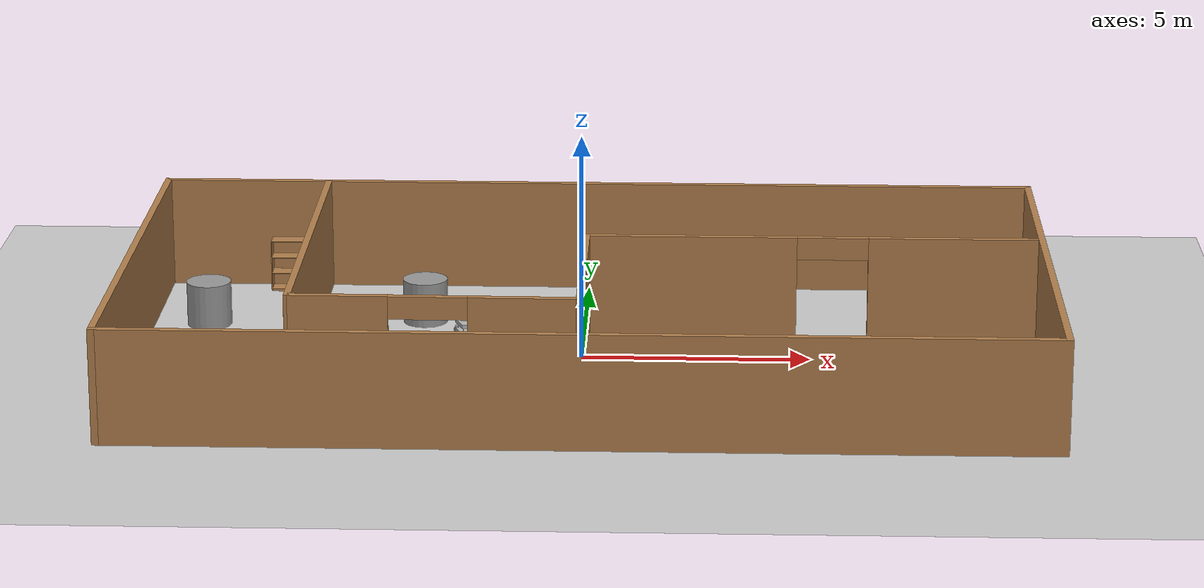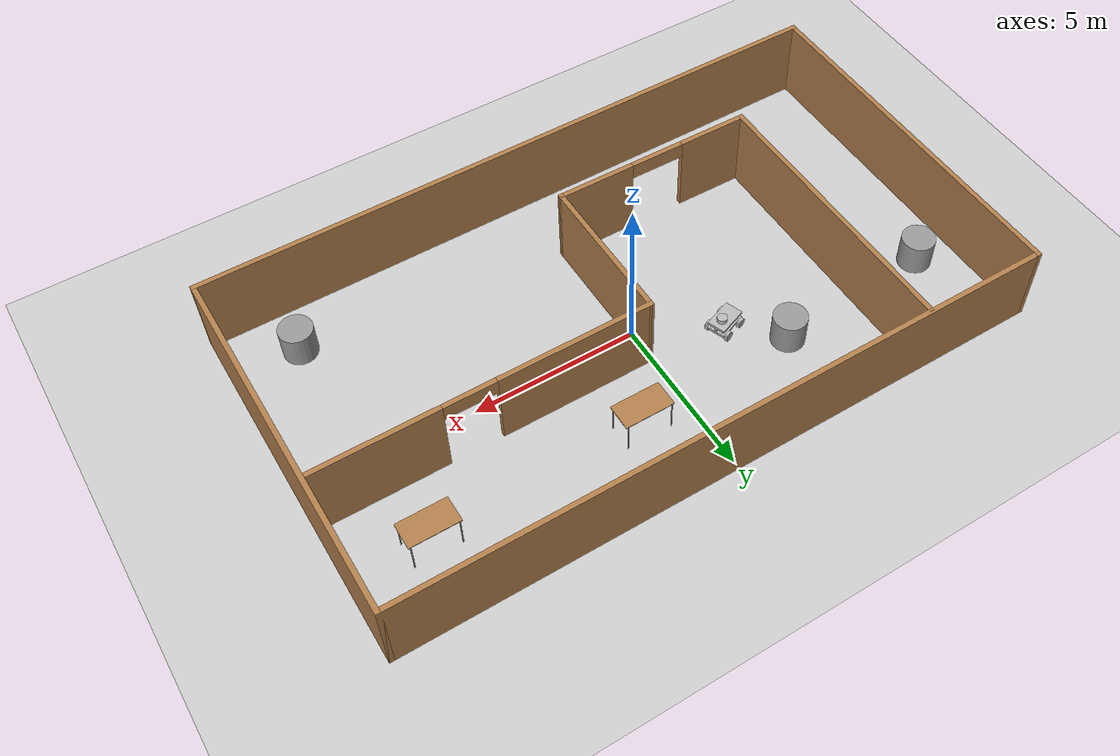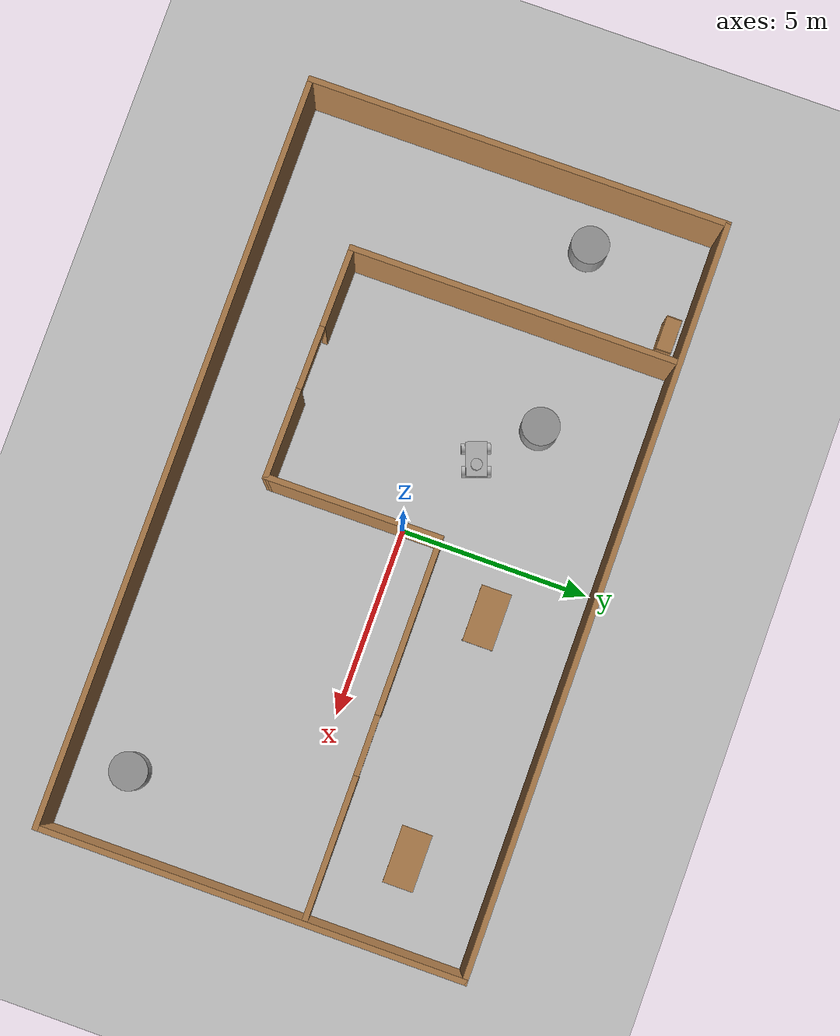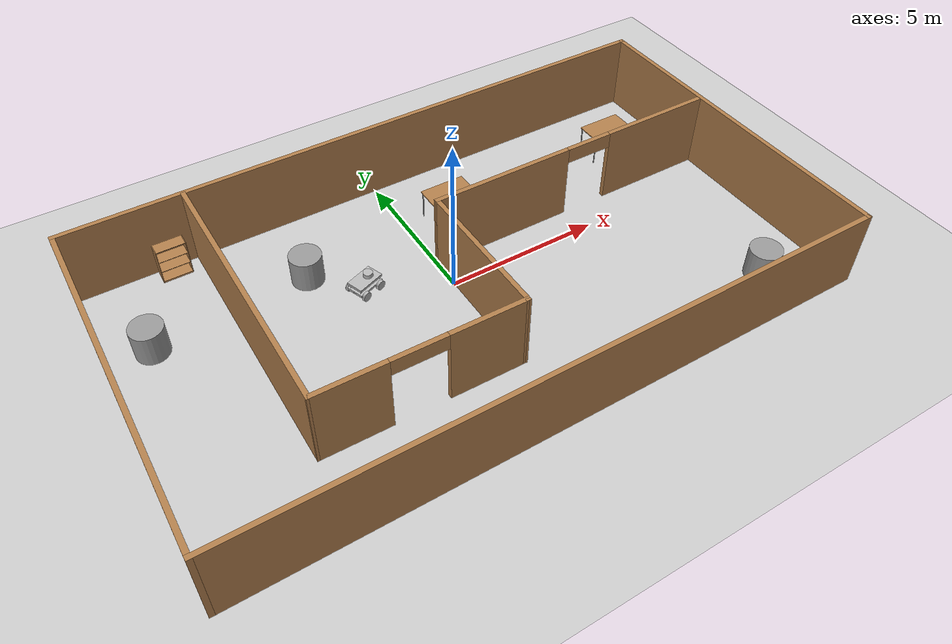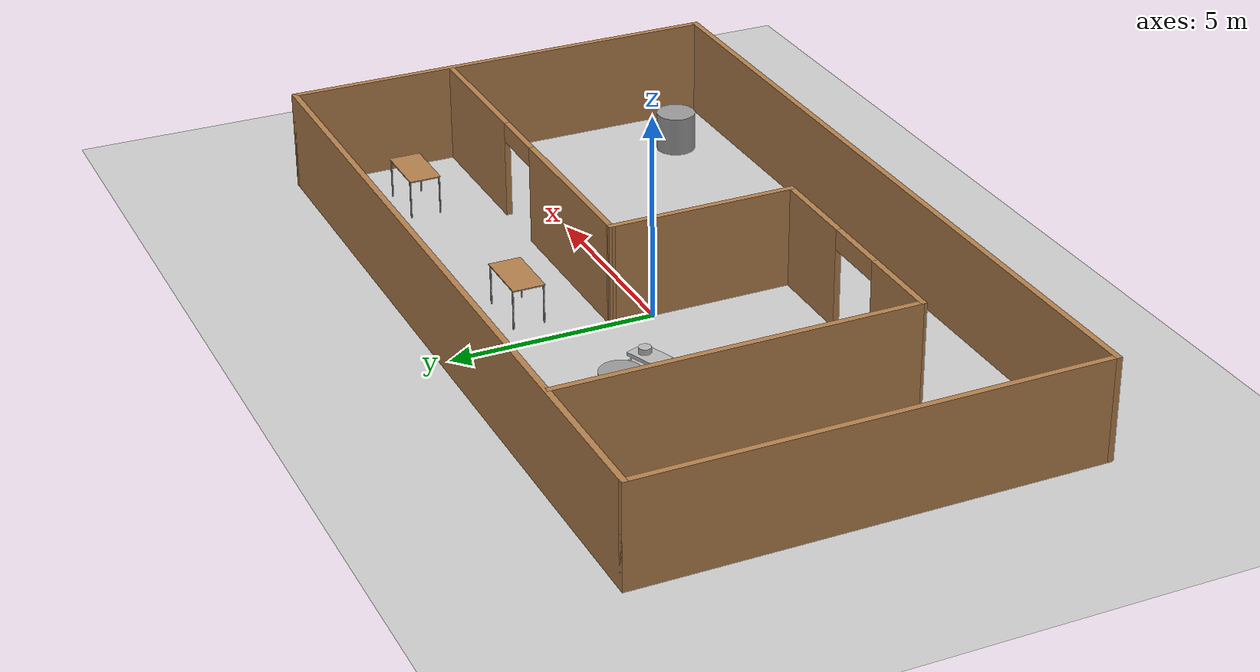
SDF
<sdf version="1.7">
 <world name="default">
  <light name="sun" type="directional">
   <pose>0 0 10 0 -0 0</pose>
   <diffuse>0.8 0.8 0.8 1</diffuse>
   <specular>0.2 0.2 0.2 1</specular>
   <attenuation>
    <range>1000</range>
    <constant>0.9</constant>
    <linear>0.01</linear>
    <quadratic>0.001</quadratic>
   </attenuation>
   <direction>-0.5 0.1 -0.9</direction>
   <spot><inner_angle>0</inner_angle><outer_angle>0</outer_angle><falloff>0</falloff></spot>
  </light>
  <model name="ground_plane">
   <static>1</static>
   <link name="link">
    <collision name="collision">
     <geometry><plane><normal>0 0 1</normal><size>100 100</size></plane></geometry>
     <surface><friction><ode><mu>100</mu><mu2>50</mu2></ode></friction></surface>
    </collision>
    <visual name="visual">
     <cast_shadows>0</cast_shadows>
     <geometry><plane><normal>0 0 1</normal><size>100 100</size></plane></geometry>
     <material>
      <script><uri>file://media/materials/scripts/gazebo.material</uri><name>Gazebo/Grey</name></script>
     </material>
    </visual>
   </link>
  </model>
  <gravity>0 0 -9.8</gravity>
  <magnetic_field>6e-06 2.3e-05 -4.2e-05</magnetic_field>
  <atmosphere type="adiabatic"/>
  <physics type="ode">
   <max_step_size>0.001</max_step_size>
   <real_time_factor>1</real_time_factor>
   <real_time_update_rate>1000</real_time_update_rate>
  </physics>
  <scene><ambient>0.4 0.4 0.4 1</ambient><background>0.7 0.7 0.7 1</background><shadows>1</shadows></scene>
  <spherical_coordinates>
   <surface_model>EARTH_WGS84</surface_model>
   <latitude_deg>0</latitude_deg>
   <longitude_deg>0</longitude_deg>
   <elevation>0</elevation>
   <heading_deg>0</heading_deg>
  </spherical_coordinates>
  <model name="newWorld">
   <pose>0.151035 -0.38586 0 0 -0 0</pose>
   <link name="Wall_10">
    <collision name="Wall_10_Collision">
     <geometry><box><size>20 0.15 2.5</size></box></geometry>
     <pose>0 0 1.25 0 -0 0</pose>
    </collision>
    <visual name="Wall_10_Visual">
     <pose>0 0 1.25 0 -0 0</pose>
     <geometry><box><size>20 0.15 2.5</size></box></geometry>
     <material>
      <script><uri>file://media/materials/scripts/gazebo.material</uri><name>Gazebo/Wood</name></script>
      <ambient>0 0 0 1</ambient>
     </material>
     <meta><layer>0</layer></meta>
    </visual>
    <pose>-0 -5.55 0 0 -0 3.14159</pose>
   </link>
   <link name="Wall_14">
    <collision name="Wall_14_Collision">
     <geometry><box><size>11.25 0.15 2.5</size></box></geometry>
     <pose>0 0 1.25 0 -0 0</pose>
    </collision>
    <visual name="Wall_14_Visual">
     <pose>0 0 1.25 0 -0 0</pose>
     <geometry><box><size>11.25 0.15 2.5</size></box></geometry>
     <material>
      <script><uri>file://media/materials/scripts/gazebo.material</uri><name>Gazebo/Wood</name></script>
      <ambient>0 0 0 1</ambient>
     </material>
     <meta><layer>0</layer></meta>
    </visual>
    <pose>-9.925 0 0 0 -0 1.5708</pose>
   </link>
   <link name="Wall_16">
    <collision name="Wall_16_Collision">
     <geometry><box><size>8.75 0.15 2.5</size></box></geometry>
     <pose>0 0 1.25 0 -0 0</pose>
    </collision>
    <visual name="Wall_16_Visual">
     <pose>0 0 1.25 0 -0 0</pose>
     <geometry><box><size>8.75 0.15 2.5</size></box></geometry>
     <material>
      <script><uri>file://media/materials/scripts/gazebo.material</uri><name>Gazebo/Wood</name></script>
      <ambient>0 0 0 1</ambient>
     </material>
     <meta><layer>0</layer></meta>
    </visual>
    <pose>-6.1998 1.17964 0 0 -0 -1.5708</pose>
   </link>
   <link name="Wall_18">
    <pose>-3.13221 -3.15554 0 0 -0 -0.011467</pose>
    <visual name="Wall_18_Visual_0">
     <pose>-2.04649 0 1.25 0 -0 0</pose>
     <geometry><box><size>2.19259 0.15 2.5</size></box></geometry>
     <material>
      <script><uri>file://media/materials/scripts/gazebo.material</uri><name>Gazebo/Wood</name></script>
      <ambient>0 0 0 1</ambient>
     </material>
     <meta><layer>0</layer></meta>
    </visual>
    <collision name="Wall_18_Collision_0">
     <geometry><box><size>2.19259 0.15 2.5</size></box></geometry>
     <pose>-2.04649 0 1.25 0 -0 0</pose>
    </collision>
    <visual name="Wall_18_Visual_1">
     <pose>1.93326 0 1.25 0 -0 0</pose>
     <geometry><box><size>2.41906 0.15 2.5</size></box></geometry>
     <material>
      <script><uri>file://media/materials/scripts/gazebo.material</uri><name>Gazebo/Wood</name></script>
      <ambient>0 0 0 1</ambient>
     </material>
     <meta><layer>0</layer></meta>
    </visual>
    <collision name="Wall_18_Collision_1">
     <geometry><box><size>2.41906 0.15 2.5</size></box></geometry>
     <pose>1.93326 0 1.25 0 -0 0</pose>
    </collision>
    <visual name="Wall_18_Visual_2">
     <pose>-0.11323 0 2.25 0 -0 0</pose>
     <geometry><box><size>1.67393 0.15 0.5</size></box></geometry>
     <material>
      <script><uri>file://media/materials/scripts/gazebo.material</uri><name>Gazebo/Wood</name></script>
      <ambient>0 0 0 1</ambient>
     </material>
     <meta><layer>0</layer></meta>
    </visual>
    <collision name="Wall_18_Collision_2">
     <geometry><box><size>1.67393 0.15 0.5</size></box></geometry>
     <pose>-0.11323 0 2.25 0 -0 0</pose>
    </collision>
   </link>
   <link name="Wall_21">
    <pose>4.84631 1.39891 0 0 -0 0</pose>
    <visual name="Wall_21_Visual_0">
     <pose>-2.64583 0 1.25 0 -0 0</pose>
     <geometry><box><size>4.70833 0.15 2.5</size></box></geometry>
     <material>
      <script><uri>file://media/materials/scripts/gazebo.material</uri><name>Gazebo/Wood</name></script>
      <ambient>0 0 0 1</ambient>
     </material>
     <meta><layer>0</layer></meta>
    </visual>
    <collision name="Wall_21_Collision_0">
     <geometry><box><size>4.70833 0.15 2.5</size></box></geometry>
     <pose>-2.64583 0 1.25 0 -0 0</pose>
    </collision>
    <visual name="Wall_21_Visual_1">
     <pose>3.13836 0 1.25 0 -0 0</pose>
     <geometry><box><size>3.72327 0.15 2.5</size></box></geometry>
     <material>
      <script><uri>file://media/materials/scripts/gazebo.material</uri><name>Gazebo/Wood</name></script>
      <ambient>0 0 0 1</ambient>
     </material>
     <meta><layer>0</layer></meta>
    </visual>
    <collision name="Wall_21_Collision_1">
     <geometry><box><size>3.72327 0.15 2.5</size></box></geometry>
     <pose>3.13836 0 1.25 0 -0 0</pose>
    </collision>
    <visual name="Wall_21_Visual_2">
     <pose>0.492529 0 2.25 0 -0 0</pose>
     <geometry><box><size>1.5684 0.15 0.5</size></box></geometry>
     <material>
      <script><uri>file://media/materials/scripts/gazebo.material</uri><name>Gazebo/Wood</name></script>
      <ambient>0 0 0 1</ambient>
     </material>
     <meta><layer>0</layer></meta>
    </visual>
    <collision name="Wall_21_Collision_2">
     <geometry><box><size>1.5684 0.15 0.5</size></box></geometry>
     <pose>0.492529 0 2.25 0 -0 0</pose>
    </collision>
   </link>
   <link name="Wall_23">
    <collision name="Wall_23_Collision">
     <geometry><box><size>4.73964 0.15 2.5</size></box></geometry>
     <pose>0 0 1.25 0 -0 0</pose>
    </collision>
    <visual name="Wall_23_Visual">
     <pose>0 0 1.25 0 -0 0</pose>
     <geometry><box><size>4.73964 0.15 2.5</size></box></geometry>
     <material>
      <script><uri>file://media/materials/scripts/gazebo.material</uri><name>Gazebo/Wood</name></script>
      <ambient>0 0 0 1</ambient>
     </material>
     <meta><layer>0</layer></meta>
    </visual>
    <pose>-0.071658 -0.895904 0 0 -0 1.57386</pose>
   </link>
   <link name="Wall_25">
    <collision name="Wall_25_Collision">
     <geometry><box><size>20 0.15 2.5</size></box></geometry>
     <pose>0 0 1.25 0 -0 0</pose>
    </collision>
    <visual name="Wall_25_Visual">
     <pose>0 0 1.25 0 -0 0</pose>
     <geometry><box><size>20 0.15 2.5</size></box></geometry>
     <material>
      <script><uri>file://media/materials/scripts/gazebo.material</uri><name>Gazebo/Wood</name></script>
      <ambient>0 0 0 1</ambient>
     </material>
     <meta><layer>0</layer></meta>
    </visual>
    <pose>-0 5.55 0 0 -0 0</pose>
   </link>
   <link name="Wall_9">
    <collision name="Wall_9_Collision">
     <geometry><box><size>11.25 0.15 2.5</size></box></geometry>
     <pose>0 0 1.25 0 -0 0</pose>
    </collision>
    <visual name="Wall_9_Visual">
     <pose>0 0 1.25 0 -0 0</pose>
     <geometry><box><size>11.25 0.15 2.5</size></box></geometry>
     <material>
      <script><uri>file://media/materials/scripts/gazebo.material</uri><name>Gazebo/Wood</name></script>
      <ambient>0 0 0 1</ambient>
     </material>
     <meta><layer>0</layer></meta>
    </visual>
    <pose>9.925 0 0 0 -0 -1.5708</pose>
   </link>
   <static>1</static>
  </model>
  <model name="unit_cylinder">
   <pose>-3.62013 2.45029 0.499994 -4e-06 -2e-06 -0</pose>
   <link name="link">
    <inertial>
     <mass>1</mass>
     <inertia><ixx>0.145833</ixx><ixy>0</ixy><ixz>0</ixz><iyy>0.145833</iyy><iyz>0</iyz><izz>0.125</izz></inertia>
    </inertial>
    <collision name="collision">
     <geometry><cylinder><radius>0.5</radius><length>1</length></cylinder></geometry>
    </collision>
    <visual name="visual">
     <geometry><cylinder><radius>0.5</radius><length>1</length></cylinder></geometry>
     <material>
      <script><name>Gazebo/Grey</name><uri>file://media/materials/scripts/gazebo.material</uri></script>
     </material>
    </visual>
   </link>
  </model>
  <model name="unit_cylinder_0">
   <pose>-8.47811 2.09775 0.499992 -3e-06 -4e-06 -0.018024</pose>
   <link name="link">
    <inertial>
     <mass>1</mass>
     <inertia><ixx>0.145833</ixx><ixy>0</ixy><ixz>0</ixz><iyy>0.145833</iyy><iyz>0</iyz><izz>0.125</izz></inertia>
    </inertial>
    <collision name="collision">
     <geometry><cylinder><radius>0.5</radius><length>1</length></cylinder></geometry>
    </collision>
    <visual name="visual">
     <geometry><cylinder><radius>0.5</radius><length>1</length></cylinder></geometry>
     <material>
      <script><name>Gazebo/Grey</name><uri>file://media/materials/scripts/gazebo.material</uri></script>
     </material>
    </visual>
   </link>
  </model>
  <model name="unit_cylinder_1">
   <pose>8.0994 -4.42539 0.499992 -3e-06 2e-06 0</pose>
   <link name="link">
    <inertial>
     <mass>1</mass>
     <inertia><ixx>0.145833</ixx><ixy>0</ixy><ixz>0</ixz><iyy>0.145833</iyy><iyz>0</iyz><izz>0.125</izz></inertia>
    </inertial>
    <collision name="collision">
     <geometry><cylinder><radius>0.5</radius><length>1</length></cylinder></geometry>
    </collision>
    <visual name="visual">
     <geometry><cylinder><radius>0.5</radius><length>1</length></cylinder></geometry>
     <material>
      <script><name>Gazebo/Grey</name><uri>file://media/materials/scripts/gazebo.material</uri></script>
     </material>
    </visual>
   </link>
  </model>
  <model name="table">
   <static>1</static>
   <link name="link">
    <collision name="surface">
     <pose>0 0 1 0 -0 0</pose>
     <geometry><box><size>1.5 0.8 0.03</size></box></geometry>
     <surface><friction><ode><mu>0.6</mu><mu2>0.6</mu2></ode></friction></surface>
    </collision>
    <visual name="visual1">
     <pose>0 0 1 0 -0 0</pose>
     <geometry><box><size>1.5 0.8 0.03</size></box></geometry>
     <material>
      <script><uri>file://media/materials/scripts/gazebo.material</uri><name>Gazebo/Wood</name></script>
     </material>
    </visual>
    <collision name="front_left_leg">
     <pose>0.68 0.38 0.5 0 -0 0</pose>
     <geometry><cylinder><radius>0.02</radius><length>1</length></cylinder></geometry>
    </collision>
    <visual name="front_left_leg">
     <pose>0.68 0.38 0.5 0 -0 0</pose>
     <geometry><cylinder><radius>0.02</radius><length>1</length></cylinder></geometry>
     <material>
      <script><uri>file://media/materials/scripts/gazebo.material</uri><name>Gazebo/Grey</name></script>
     </material>
    </visual>
    <collision name="front_right_leg">
     <pose>0.68 -0.38 0.5 0 -0 0</pose>
     <geometry><cylinder><radius>0.02</radius><length>1</length></cylinder></geometry>
    </collision>
    <visual name="front_right_leg">
     <pose>0.68 -0.38 0.5 0 -0 0</pose>
     <geometry><cylinder><radius>0.02</radius><length>1</length></cylinder></geometry>
     <material>
      <script><uri>file://media/materials/scripts/gazebo.material</uri><name>Gazebo/Grey</name></script>
     </material>
    </visual>
    <collision name="back_right_leg">
     <pose>-0.68 -0.38 0.5 0 -0 0</pose>
     <geometry><cylinder><radius>0.02</radius><length>1</length></cylinder></geometry>
    </collision>
    <visual name="back_right_leg">
     <pose>-0.68 -0.38 0.5 0 -0 0</pose>
     <geometry><cylinder><radius>0.02</radius><length>1</length></cylinder></geometry>
     <material>
      <script><uri>file://media/materials/scripts/gazebo.material</uri><name>Gazebo/Grey</name></script>
     </material>
    </visual>
    <collision name="back_left_leg">
     <pose>-0.68 0.38 0.5 0 -0 0</pose>
     <geometry><cylinder><radius>0.02</radius><length>1</length></cylinder></geometry>
    </collision>
    <visual name="back_left_leg">
     <pose>-0.68 0.38 0.5 0 -0 0</pose>
     <geometry><cylinder><radius>0.02</radius><length>1</length></cylinder></geometry>
     <material>
      <script><uri>file://media/materials/scripts/gazebo.material</uri><name>Gazebo/Grey</name></script>
     </material>
    </visual>
   </link>
   <pose>7.79816 2.90378 0 0 -0 0</pose>
  </model>
  <model name="table_0">
   <static>1</static>
   <link name="link">
    <collision name="surface">
     <pose>0 0 1 0 -0 0</pose>
     <geometry><box><size>1.5 0.8 0.03</size></box></geometry>
     <surface><friction><ode><mu>0.6</mu><mu2>0.6</mu2></ode></friction></surface>
    </collision>
    <visual name="visual1">
     <pose>0 0 1 0 -0 0</pose>
     <geometry><box><size>1.5 0.8 0.03</size></box></geometry>
     <material>
      <script><uri>file://media/materials/scripts/gazebo.material</uri><name>Gazebo/Wood</name></script>
     </material>
    </visual>
    <collision name="front_left_leg">
     <pose>0.68 0.38 0.5 0 -0 0</pose>
     <geometry><cylinder><radius>0.02</radius><length>1</length></cylinder></geometry>
    </collision>
    <visual name="front_left_leg">
     <pose>0.68 0.38 0.5 0 -0 0</pose>
     <geometry><cylinder><radius>0.02</radius><length>1</length></cylinder></geometry>
     <material>
      <script><uri>file://media/materials/scripts/gazebo.material</uri><name>Gazebo/Grey</name></script>
     </material>
    </visual>
    <collision name="front_right_leg">
     <pose>0.68 -0.38 0.5 0 -0 0</pose>
     <geometry><cylinder><radius>0.02</radius><length>1</length></cylinder></geometry>
    </collision>
    <visual name="front_right_leg">
     <pose>0.68 -0.38 0.5 0 -0 0</pose>
     <geometry><cylinder><radius>0.02</radius><length>1</length></cylinder></geometry>
     <material>
      <script><uri>file://media/materials/scripts/gazebo.material</uri><name>Gazebo/Grey</name></script>
     </material>
    </visual>
    <collision name="back_right_leg">
     <pose>-0.68 -0.38 0.5 0 -0 0</pose>
     <geometry><cylinder><radius>0.02</radius><length>1</length></cylinder></geometry>
    </collision>
    <visual name="back_right_leg">
     <pose>-0.68 -0.38 0.5 0 -0 0</pose>
     <geometry><cylinder><radius>0.02</radius><length>1</length></cylinder></geometry>
     <material>
      <script><uri>file://media/materials/scripts/gazebo.material</uri><name>Gazebo/Grey</name></script>
     </material>
    </visual>
    <collision name="back_left_leg">
     <pose>-0.68 0.38 0.5 0 -0 0</pose>
     <geometry><cylinder><radius>0.02</radius><length>1</length></cylinder></geometry>
    </collision>
    <visual name="back_left_leg">
     <pose>-0.68 0.38 0.5 0 -0 0</pose>
     <geometry><cylinder><radius>0.02</radius><length>1</length></cylinder></geometry>
     <material>
      <script><uri>file://media/materials/scripts/gazebo.material</uri><name>Gazebo/Grey</name></script>
     </material>
    </visual>
   </link>
   <pose>1.44416 2.77487 0 0 -0 0</pose>
  </model>
  <model name="bookshelf">
   <static>1</static>
   <link name="link">
    <inertial><mass>1</mass></inertial>
    <collision name="back">
     <pose>0 0.005 0.6 0 -0 0</pose>
     <geometry><box><size>0.9 0.01 1.2</size></box></geometry>
    </collision>
    <visual name="visual1">
     <pose>0 0.005 0.6 0 -0 0</pose>
     <geometry><box><size>0.9 0.01 1.2</size></box></geometry>
     <material>
      <script><uri>file://media/materials/scripts/gazebo.material</uri><name>Gazebo/Wood</name></script>
     </material>
    </visual>
    <collision name="left_side">
     <pose>0.45 -0.195 0.6 0 -0 0</pose>
     <geometry><box><size>0.02 0.4 1.2</size></box></geometry>
    </collision>
    <visual name="visual2">
     <pose>0.45 -0.195 0.6 0 -0 0</pose>
     <geometry><box><size>0.02 0.4 1.2</size></box></geometry>
     <material>
      <script><uri>file://media/materials/scripts/gazebo.material</uri><name>Gazebo/Wood</name></script>
     </material>
    </visual>
    <collision name="right_side">
     <pose>-0.45 -0.195 0.6 0 -0 0</pose>
     <geometry><box><size>0.02 0.4 1.2</size></box></geometry>
    </collision>
    <visual name="visual3">
     <pose>-0.45 -0.195 0.6 0 -0 0</pose>
     <geometry><box><size>0.02 0.4 1.2</size></box></geometry>
     <material>
      <script><uri>file://media/materials/scripts/gazebo.material</uri><name>Gazebo/Wood</name></script>
     </material>
    </visual>
    <collision name="bottom">
     <pose>0 -0.195 0.03 0 -0 0</pose>
     <geometry><box><size>0.88 0.4 0.06</size></box></geometry>
    </collision>
    <visual name="visual4">
     <pose>0 -0.195 0.03 0 -0 0</pose>
     <geometry><box><size>0.88 0.4 0.06</size></box></geometry>
     <material>
      <script><uri>file://media/materials/scripts/gazebo.material</uri><name>Gazebo/Wood</name></script>
     </material>
    </visual>
    <collision name="top">
     <pose>0 -0.195 1.19 0 -0 0</pose>
     <geometry><box><size>0.88 0.4 0.02</size></box></geometry>
    </collision>
    <visual name="visual5">
     <pose>0 -0.195 1.19 0 -0 0</pose>
     <geometry><box><size>0.88 0.4 0.02</size></box></geometry>
     <material>
      <script><uri>file://media/materials/scripts/gazebo.material</uri><name>Gazebo/Wood</name></script>
     </material>
    </visual>
    <collision name="low_shelf">
     <pose>0 -0.195 0.43 0 -0 0</pose>
     <geometry><box><size>0.88 0.4 0.02</size></box></geometry>
    </collision>
    <visual name="visual6">
     <pose>0 -0.195 0.43 0 -0 0</pose>
     <geometry><box><size>0.88 0.4 0.02</size></box></geometry>
     <material>
      <script><uri>file://media/materials/scripts/gazebo.material</uri><name>Gazebo/Wood</name></script>
     </material>
    </visual>
    <collision name="high_shelf">
     <pose>0 -0.195 0.8 0 -0 0</pose>
     <geometry><box><size>0.88 0.4 0.02</size></box></geometry>
    </collision>
    <visual name="visual7">
     <pose>0 -0.195 0.8 0 -0 0</pose>
     <geometry><box><size>0.88 0.4 0.02</size></box></geometry>
     <material>
      <script><uri>file://media/materials/scripts/gazebo.material</uri><name>Gazebo/Wood</name></script>
     </material>
    </visual>
   </link>
   <pose>-6.90543 4.93823 0 0 -0 0</pose>
  </model>
  <model name="navy">
   <link name="base_link">
    <inertial>
     <pose>0.002723 0 0.105941 0 -0 0</pose>
     <mass>2.02</mass>
     <inertia>
      <ixx>0.722518</ixx>
      <ixy>0</ixy>
      <ixz>-0.000217327</ixz>
      <iyy>0.724328</iyy>
      <iyz>0</iyz>
      <izz>0.701811</izz>
     </inertia>
    </inertial>
    <collision name="base_link_collision"><geometry><box><size>0.9 0.55 0.08</size></box></geometry></collision>
    <collision name="base_link_fixed_joint_lump__camera_link_collision_1">
     <pose>0.4 0 0.08 0 -0 0</pose>
     <geometry><box><size>0.08 0.08 0.08</size></box></geometry>
    </collision>
    <collision name="base_link_fixed_joint_lump__lidar_link_collision_2">
     <pose>0.15 0 0.32 0 -0 0</pose>
     <geometry>
      <mesh><scale>1 1 1</scale><uri>/home/alashkar/scratch_ws/src/robot_description/meshes/rplidar.dae</uri></mesh>
     </geometry>
    </collision>
    <collision name="base_link_fixed_joint_lump__spacer_BL_collision_3">
     <pose>-0.4 0.2 0.1 0 -0 0</pose>
     <geometry><cylinder><length>0.14</length><radius>0.009</radius></cylinder></geometry>
    </collision>
    <collision name="base_link_fixed_joint_lump__spacer_BR_collision_4">
     <pose>-0.4 -0.2 0.1 0 -0 0</pose>
     <geometry><cylinder><length>0.14</length><radius>0.009</radius></cylinder></geometry>
    </collision>
    <collision name="base_link_fixed_joint_lump__spacer_FL_collision_5">
     <pose>0.4 0.2 0.1 0 -0 0</pose>
     <geometry><cylinder><length>0.14</length><radius>0.009</radius></cylinder></geometry>
    </collision>
    <collision name="base_link_fixed_joint_lump__spacer_FR_collision_6">
     <pose>0.4 -0.2 0.1 0 -0 0</pose>
     <geometry><cylinder><length>0.14</length><radius>0.009</radius></cylinder></geometry>
    </collision>
    <collision name="base_link_fixed_joint_lump__top_link_collision_7">
     <pose>0 0 0.21 0 -0 0</pose>
     <geometry><box><size>0.9 0.55 0.08</size></box></geometry>
    </collision>
    <collision name="base_link_fixed_joint_lump__ultrasonicB_link_collision_8">
     <pose>-0.45 0 0.01 0 -0 0</pose>
     <geometry><box><size>0.02 0.1 0.03</size></box></geometry>
    </collision>
    <collision name="base_link_fixed_joint_lump__ultrasonicF_link_collision_9">
     <pose>0.45 0 0.01 0 -0 0</pose>
     <geometry><box><size>0.02 0.1 0.03</size></box></geometry>
    </collision>
    <visual name="base_link_fixed_joint_lump__body_visual_visual">
     <geometry><box><size>0.9 0.55 0.08</size></box></geometry>
    </visual>
    <visual name="base_link_fixed_joint_lump__camera_link_visual_1">
     <pose>0.45 0 0.08 1.57 -0 1.57</pose>
     <geometry><cylinder><length>0.02</length><radius>0.02</radius></cylinder></geometry>
    </visual>
    <visual name="base_link_fixed_joint_lump__camera_body_visual_2">
     <pose>0.4 0 0.08 0 -0 0</pose>
     <geometry><box><size>0.08 0.08 0.08</size></box></geometry>
    </visual>
    <visual name="base_link_fixed_joint_lump__lidar_link_visual_3">
     <pose>0.15 0 0.32 0 -0 0</pose>
     <geometry><cylinder><length>0.15</length><radius>0.15</radius></cylinder></geometry>
    </visual>
    <visual name="base_link_fixed_joint_lump__spacer_BL_visual_4">
     <pose>-0.4 0.2 0.1 0 -0 0</pose>
     <geometry><cylinder><length>0.14</length><radius>0.009</radius></cylinder></geometry>
    </visual>
    <visual name="base_link_fixed_joint_lump__spacer_BR_visual_5">
     <pose>-0.4 -0.2 0.1 0 -0 0</pose>
     <geometry><cylinder><length>0.14</length><radius>0.009</radius></cylinder></geometry>
    </visual>
    <visual name="base_link_fixed_joint_lump__spacer_FL_visual_6">
     <pose>0.4 0.2 0.1 0 -0 0</pose>
     <geometry><cylinder><length>0.14</length><radius>0.009</radius></cylinder></geometry>
    </visual>
    <visual name="base_link_fixed_joint_lump__spacer_FR_visual_7">
     <pose>0.4 -0.2 0.1 0 -0 0</pose>
     <geometry><cylinder><length>0.14</length><radius>0.009</radius></cylinder></geometry>
    </visual>
    <visual name="base_link_fixed_joint_lump__top_link_visual_8">
     <pose>0 0 0.21 0 -0 0</pose>
     <geometry><box><size>0.9 0.55 0.08</size></box></geometry>
    </visual>
    <visual name="base_link_fixed_joint_lump__ultrasonicB_link_visual_9">
     <pose>-0.45 0 0.01 0 -0 0</pose>
     <geometry><box><size>0.02 0.1 0.03</size></box></geometry>
    </visual>
    <visual name="base_link_fixed_joint_lump__ultrasonicF_link_visual_10">
     <pose>0.45 0 0.01 0 -0 0</pose>
     <geometry><box><size>0.02 0.1 0.03</size></box></geometry>
    </visual>
    <sensor name="camera1" type="camera">
     <update_rate>30</update_rate>
     <camera name="head">
      <horizontal_fov>1.5708</horizontal_fov>
      <image><width>800</width><height>800</height><format>R8G8B8</format></image>
      <clip><near>0.02</near><far>300</far></clip>
      <noise><type>gaussian</type><mean>0</mean><stddev>0.007</stddev></noise>
     </camera>
     <plugin name="camera_controller" filename="libgazebo_ros_camera.so">
      <alwaysOn>1</alwaysOn>
      <updateRate>0.0</updateRate>
      <cameraName>/camera1</cameraName>
      <imageTopicName>image_raw</imageTopicName>
      <cameraInfoTopicName>camera1/camera_info</cameraInfoTopicName>
      <frameName>camera_link</frameName>
      <hackBaseline>0.07</hackBaseline>
      <distortionK1>0.0</distortionK1>
      <distortionK2>0.0</distortionK2>
      <distortionK3>0.0</distortionK3>
      <distortionT1>0.0</distortionT1>
      <distortionT2>0.0</distortionT2>
      <robotNamespace>/</robotNamespace>
     </plugin>
     <pose>0.4 0 0.08 0 -0 1.57</pose>
    </sensor>
    <sensor name="lidar_sensor" type="ray">
     <visualize>1</visualize>
     <update_rate>40</update_rate>
     <ray>
      <scan>
       <horizontal>
        <samples>720</samples>
        <resolution>1</resolution>
        <min_angle>-1.5708</min_angle>
        <max_angle>1.5708</max_angle>
       </horizontal>
       <vertical><samples>1</samples><min_angle>0</min_angle><max_angle>0</max_angle></vertical>
      </scan>
      <range><min>0.1</min><max>30</max><resolution>0.01</resolution></range>
      <noise><type>gaussian</type><mean>0</mean><stddev>0.01</stddev></noise>
     </ray>
     <plugin name="gazebo_ros_head_hokuyo_controller" filename="libgazebo_ros_laser.so">
      <topicName>/scan</topicName>
      <frameName>lidar_link</frameName>
      <robotNamespace>/</robotNamespace>
     </plugin>
     <pose>0.15 0 0.305 0 -0 0</pose>
    </sensor>
    <sensor name="sonar" type="ray">
     <visualize>1</visualize>
     <update_rate>5</update_rate>
     <ray>
      <scan>
       <horizontal>
        <samples>5</samples>
        <resolution>1</resolution>
        <min_angle>-0.18</min_angle>
        <max_angle>0.18</max_angle>
       </horizontal>
       <vertical>
        <samples>5</samples>
        <resolution>1</resolution>
        <min_angle>-0.035</min_angle>
        <max_angle>0.035</max_angle>
       </vertical>
      </scan>
      <range><min>0.01</min><max>4</max><resolution>0.01</resolution></range>
     </ray>
     <plugin name="gazebo_ros_range" filename="libgazebo_ros_range.so">
      <gaussianNoise>0.005</gaussianNoise>
      <alwaysOn>1</alwaysOn>
      <updateRate>30</updateRate>
      <topicName>/ultrasonic2</topicName>
      <frameName>ultrasonicB_link</frameName>
      <fov>0.5</fov>
      <radiation>ultrasound</radiation>
      <robotNamespace>/</robotNamespace>
     </plugin>
     <pose>-0.45 0 0.01 0 -0 0</pose>
    </sensor>
    <sensor name="sonar" type="ray">
     <visualize>1</visualize>
     <update_rate>5</update_rate>
     <ray>
      <scan>
       <horizontal>
        <samples>5</samples>
        <resolution>1</resolution>
        <min_angle>-0.18</min_angle>
        <max_angle>0.18</max_angle>
       </horizontal>
       <vertical>
        <samples>5</samples>
        <resolution>1</resolution>
        <min_angle>-0.035</min_angle>
        <max_angle>0.035</max_angle>
       </vertical>
      </scan>
      <range><min>0.01</min><max>4</max><resolution>0.01</resolution></range>
     </ray>
     <plugin name="gazebo_ros_range" filename="libgazebo_ros_range.so">
      <gaussianNoise>0.005</gaussianNoise>
      <alwaysOn>1</alwaysOn>
      <updateRate>30</updateRate>
      <topicName>/ultrasonic1</topicName>
      <frameName>ultrasonicF_link</frameName>
      <fov>0.5</fov>
      <radiation>ultrasound</radiation>
      <robotNamespace>/</robotNamespace>
     </plugin>
     <pose>0.45 0 0.01 0 -0 0</pose>
    </sensor>
   </link>
   <joint name="BLW_joint" type="revolute">
    <pose relative_to="base_link">-0.3 0.331 -0.05 0 1.57 1.57</pose>
    <parent>base_link</parent>
    <child>BLW_link</child>
    <axis>
     <xyz>0 0 1</xyz>
     <limit><lower>-1e+16</lower><upper>1e+16</upper></limit>
     <dynamics>
      <damping>0.5</damping>
      <friction>0.2</friction>
      <spring_reference>0</spring_reference>
      <spring_stiffness>0</spring_stiffness>
     </dynamics>
    </axis>
   </joint>
   <link name="BLW_link">
    <pose relative_to="BLW_joint">0 0 0 0 -0 0</pose>
    <inertial>
     <mass>0.5</mass>
     <inertia><ixx>0.1</ixx><ixy>0</ixy><ixz>0</ixz><iyy>0.1</iyy><iyz>0</iyz><izz>0.1</izz></inertia>
    </inertial>
    <collision name="BLW_link_collision">
     <geometry><cylinder><length>0.1</length><radius>0.15</radius></cylinder></geometry>
    </collision>
    <visual name="BLW_link_visual">
     <geometry><cylinder><length>0.1</length><radius>0.15</radius></cylinder></geometry>
    </visual>
   </link>
   <joint name="BRW_joint" type="revolute">
    <pose relative_to="base_link">-0.3 -0.331 -0.05 0 1.57 1.57</pose>
    <parent>base_link</parent>
    <child>BRW_link</child>
    <axis>
     <xyz>0 0 1</xyz>
     <limit><lower>-1e+16</lower><upper>1e+16</upper></limit>
     <dynamics>
      <damping>0.5</damping>
      <friction>0.2</friction>
      <spring_reference>0</spring_reference>
      <spring_stiffness>0</spring_stiffness>
     </dynamics>
    </axis>
   </joint>
   <link name="BRW_link">
    <pose relative_to="BRW_joint">0 0 0 0 -0 0</pose>
    <inertial>
     <mass>0.5</mass>
     <inertia><ixx>0.1</ixx><ixy>0</ixy><ixz>0</ixz><iyy>0.1</iyy><iyz>0</iyz><izz>0.1</izz></inertia>
    </inertial>
    <collision name="BRW_link_collision">
     <geometry><cylinder><length>0.1</length><radius>0.15</radius></cylinder></geometry>
    </collision>
    <visual name="BRW_link_visual">
     <geometry><cylinder><length>0.1</length><radius>0.15</radius></cylinder></geometry>
    </visual>
   </link>
   <joint name="FLW_joint" type="revolute">
    <pose relative_to="base_link">0.3 0.331 -0.05 0 1.57 1.57</pose>
    <parent>base_link</parent>
    <child>FLW_link</child>
    <axis>
     <xyz>0 0 1</xyz>
     <limit><lower>-1e+16</lower><upper>1e+16</upper></limit>
     <dynamics>
      <damping>0.5</damping>
      <friction>0.2</friction>
      <spring_reference>0</spring_reference>
      <spring_stiffness>0</spring_stiffness>
     </dynamics>
    </axis>
   </joint>
   <link name="FLW_link">
    <pose relative_to="FLW_joint">0 0 0 0 -0 0</pose>
    <inertial>
     <mass>0.5</mass>
     <inertia><ixx>0.1</ixx><ixy>0</ixy><ixz>0</ixz><iyy>0.1</iyy><iyz>0</iyz><izz>0.1</izz></inertia>
    </inertial>
    <collision name="FLW_link_collision">
     <geometry><cylinder><length>0.1</length><radius>0.15</radius></cylinder></geometry>
    </collision>
    <visual name="FLW_link_visual">
     <geometry><cylinder><length>0.1</length><radius>0.15</radius></cylinder></geometry>
    </visual>
   </link>
   <joint name="FRW_joint" type="revolute">
    <pose relative_to="base_link">0.3 -0.331 -0.05 0 1.57 1.57</pose>
    <parent>base_link</parent>
    <child>FRW_link</child>
    <axis>
     <xyz>0 0 1</xyz>
     <limit><lower>-1e+16</lower><upper>1e+16</upper></limit>
     <dynamics>
      <damping>0.5</damping>
      <friction>0.2</friction>
      <spring_reference>0</spring_reference>
      <spring_stiffness>0</spring_stiffness>
     </dynamics>
    </axis>
   </joint>
   <link name="FRW_link">
    <pose relative_to="FRW_joint">0 0 0 0 -0 0</pose>
    <inertial>
     <mass>0.5</mass>
     <inertia><ixx>0.1</ixx><ixy>0</ixy><ixz>0</ixz><iyy>0.1</iyy><iyz>0</iyz><izz>0.1</izz></inertia>
    </inertial>
    <collision name="FRW_link_collision">
     <geometry><cylinder><length>0.1</length><radius>0.15</radius></cylinder></geometry>
    </collision>
    <visual name="FRW_link_visual">
     <geometry><cylinder><length>0.1</length><radius>0.15</radius></cylinder></geometry>
    </visual>
   </link>
   <plugin name="skid_steer_drive_controller" filename="libgazebo_ros_skid_steer_drive.so">
    <updateRate>100.0</updateRate>
    <robotNamespace>/</robotNamespace>
    <leftFrontJoint>FLW_joint</leftFrontJoint>
    <rightFrontJoint>FRW_joint</rightFrontJoint>
    <leftRearJoint>BLW_joint</leftRearJoint>
    <rightRearJoint>BRW_joint</rightRearJoint>
    <wheelSeparation>0.63</wheelSeparation>
    <wheelDiameter>0.15</wheelDiameter>
    <robotBaseFrame>base_link</robotBaseFrame>
    <torque>2.1</torque>
    <topicName>cmd_vel</topicName>
    <odometryTopic>odom</odometryTopic>
    <odometryFrame>odom</odometryFrame>
    <broadcastTF>1</broadcastTF>
    <commandTopic>cmd_vel</commandTopic>
    <covariance_x>0.001000</covariance_x>
    <covariance_y>0.001000</covariance_y>
    <covariance_yaw>0.100000</covariance_yaw>
   </plugin>
   <frame name="camera_joint" attached_to="base_link"><pose>0.4 0 0.08 0 -0 0</pose></frame>
   <frame name="camera_link" attached_to="camera_joint"/>
   <frame name="lidar_joint" attached_to="base_link"><pose>0.15 0 0.32 0 -0 0</pose></frame>
   <frame name="lidar_link" attached_to="lidar_joint"/>
   <frame name="spacer_BL_joint" attached_to="base_link"><pose>-0.4 0.2 0.1 0 -0 0</pose></frame>
   <frame name="spacer_BL" attached_to="spacer_BL_joint"/>
   <frame name="spacer_BR_joint" attached_to="base_link"><pose>-0.4 -0.2 0.1 0 -0 0</pose></frame>
   <frame name="spacer_BR" attached_to="spacer_BR_joint"/>
   <frame name="spacer_FL_joint" attached_to="base_link"><pose>0.4 0.2 0.1 0 -0 0</pose></frame>
   <frame name="spacer_FL" attached_to="spacer_FL_joint"/>
   <frame name="spacer_FR_joint" attached_to="base_link"><pose>0.4 -0.2 0.1 0 -0 0</pose></frame>
   <frame name="spacer_FR" attached_to="spacer_FR_joint"/>
   <frame name="top_joint" attached_to="base_link"><pose>0 0 0.21 0 -0 0</pose></frame>
   <frame name="top_link" attached_to="top_joint"/>
   <frame name="ultrasonicB_joint" attached_to="base_link"><pose>-0.45 0 0.01 0 -0 0</pose></frame>
   <frame name="ultrasonicB_link" attached_to="ultrasonicB_joint"/>
   <frame name="ultrasonicF_joint" attached_to="base_link"><pose>0.45 0 0.01 0 -0 0</pose></frame>
   <frame name="ultrasonicF_link" attached_to="ultrasonicF_joint"/>
   <pose>-2.35195 1.17459 0.200037 0 9e-06 0.353225</pose>
  </model>
 </world>
</sdf>
